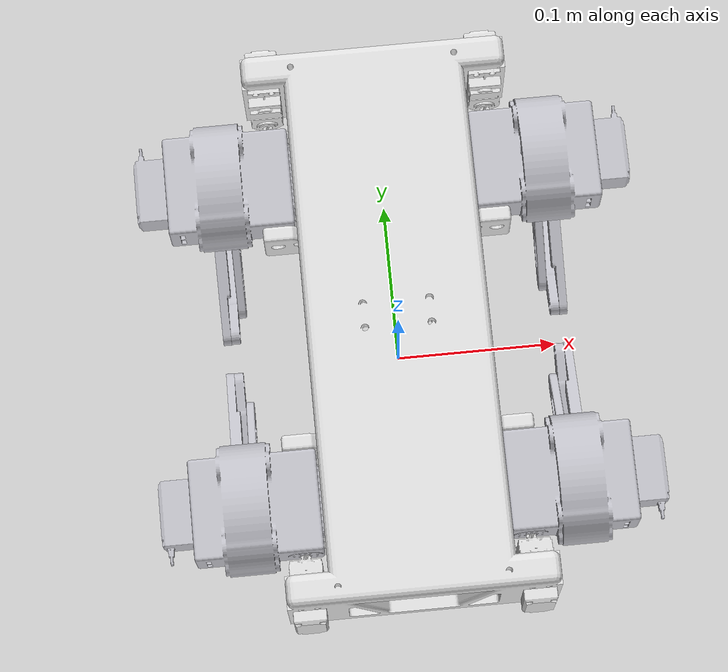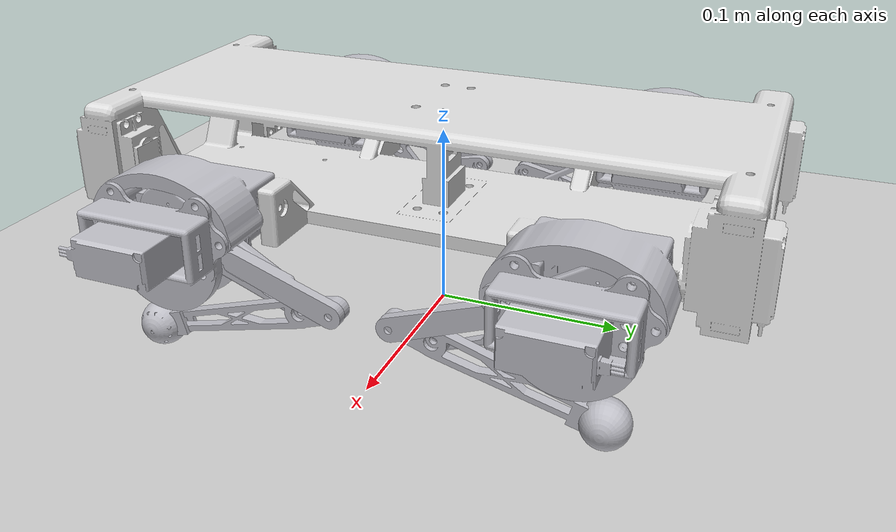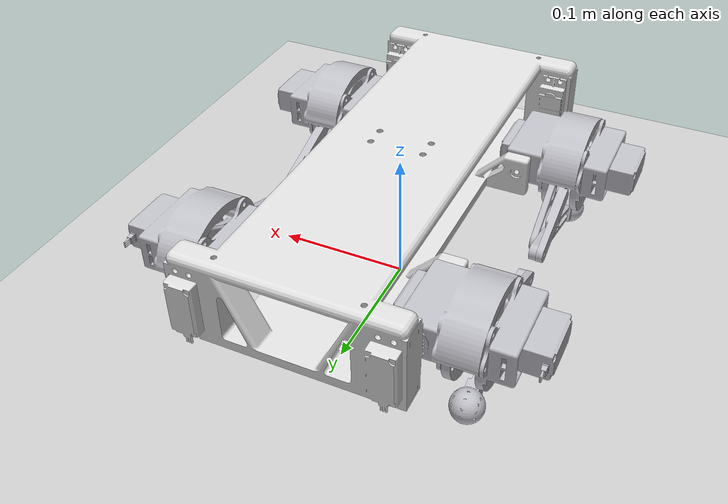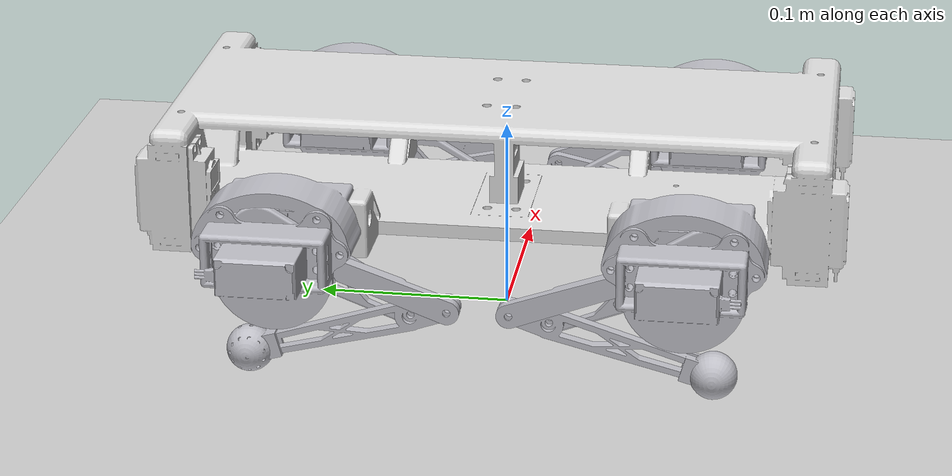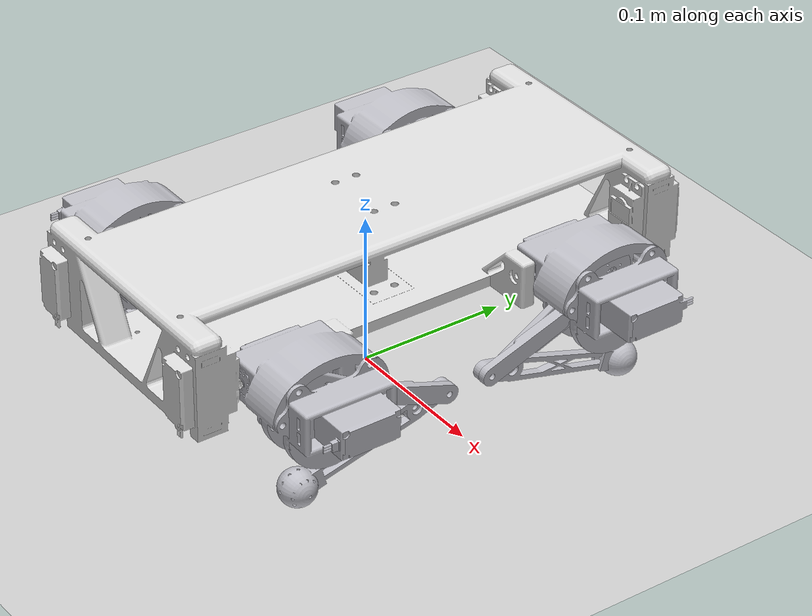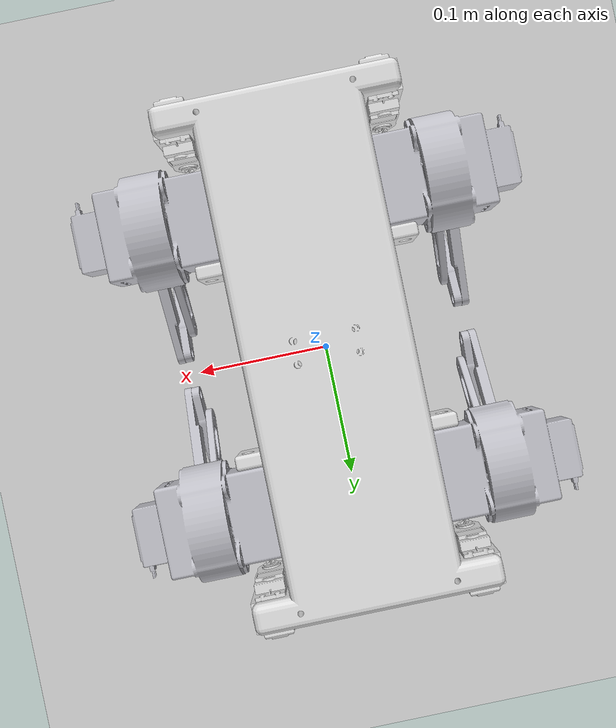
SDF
<?xml version="1.0" ?>
<sdf version="1.6">
  <world name="pioneer3_world">
    <physics name="1ms" type="ignored">
      <max_step_size>0.004</max_step_size>
      <real_time_factor>1.0</real_time_factor>
    </physics>
    <plugin
      filename="gz-sim-physics-system"
      name="gz::sim::systems::Physics">
    </plugin>
    <plugin
      filename="gz-sim-user-commands-system"
      name="gz::sim::systems::UserCommands">
    </plugin>
    <plugin
      filename="gz-sim-scene-broadcaster-system"
      name="gz::sim::systems::SceneBroadcaster">
    </plugin>
    <plugin
      filename="gz-sim-contact-system"
      name="gz::sim::systems::Contact">
    </plugin>

    <light type="directional" name="sun">
      <cast_shadows>true</cast_shadows>
      <pose>0 0 10 0 0 0</pose>
      <diffuse>0.8 0.8 0.8 1</diffuse>
      <specular>0.2 0.2 0.2 1</specular>
      <attenuation>
        <range>1000</range>
        <constant>0.9</constant>
        <linear>0.01</linear>
        <quadratic>0.001</quadratic>
      </attenuation>
      <direction>-0.5 0.1 -0.9</direction>
    </light>

    <model name="ground_plane">
      <static>true</static>
      <link name="link">
        <collision name="collision">
          <geometry>
            <plane>
              <normal>0 0 1</normal>
              <size>100 100</size>
            </plane>
          </geometry>
        </collision>
        <visual name="visual">
          <geometry>
            <plane>
              <normal>0 0 1</normal>
              <size>100 100</size>
            </plane>
          </geometry>
          <material>
            <ambient>0.8 0.8 0.8 1</ambient>
            <diffuse>0.8 0.8 0.8 1</diffuse>
            <specular>0.8 0.8 0.8 1</specular>
          </material>
        </visual>
      </link>
    </model>

    <include>
      <uri>naranjelio.sdf</uri>
      <pose>0 0 0 0 0 0</pose>
    </include>

  </world>
</sdf>

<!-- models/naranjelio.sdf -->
<sdf version='1.11'>
  <model name='naranjelio'>
    <link name='base_link'>
      <inertial>
        <pose>-0.00073235288739456627 3.5096211676128452e-05 0.086833414337982723 0 0 0</pose>
        <mass>0.6934169032732499</mass>
        <inertia>
          <ixx>0.0091529999999999997</ixx>
          <ixy>0</ixy>
          <ixz>0</ixz>
          <iyy>0.0015430000000000001</iyy>
          <iyz>9.9999999999999995e-07</iyz>
          <izz>0.0097520000000000003</izz>
        </inertia>
      </inertial>
      <collision name='base_link_collision'>
        <pose>0 0 0 0 0 0</pose>
        <geometry>
          <mesh>
            <scale>0.001 0.001 0.001</scale>
            <uri>
              /meshes/base_link.stl</uri>
          </mesh>
        </geometry>
      </collision>
      <visual name='base_link_visual'>
        <pose>0 0 0 0 0 0</pose>
        <geometry>
          <mesh>
            <scale>0.001 0.001 0.001</scale>
            <uri>
              /meshes/base_link.stl</uri>
          </mesh>
        </geometry>
        <material>
          <diffuse>0.875 0.875 0.875 1</diffuse>
          <ambient>0.875 0.875 0.875 1</ambient>
        </material>
      </visual>
    </link>
    <joint name='HipBackDer' type='revolute'>
      <pose relative_to='base_link'>-0.068594000000000002 0.13270000000000001 0.072321999999999997 0
        0 0</pose>
      <parent>base_link</parent>
      <child>BackDer_1</child>
      <axis>
        <xyz>0 -1 0</xyz>
        <limit>
          <lower>-3.1415899999999999</lower>
          <upper>3.1415899999999999</upper>
          <effort>10</effort>
          <velocity>5</velocity>
        </limit>
        <dynamics>
          <spring_reference>0</spring_reference>
          <spring_stiffness>0</spring_stiffness>
        </dynamics>
      </axis>
    </joint>
    <link name='BackDer_1'>
      <pose relative_to='HipBackDer'>0 0 0 0 0 0</pose>
      <inertial>
        <pose>-0.028685619247639741 -0.031166626302325501 -0.0006386163483644014 0 0 0</pose>
        <mass>0.089858740267303255</mass>
        <inertia>
          <ixx>6.3999999999999997e-05</ixx>
          <ixy>0</ixy>
          <ixz>0</ixz>
          <iyy>6.7999999999999999e-05</iyy>
          <iyz>0</iyz>
          <izz>8.5000000000000006e-05</izz>
        </inertia>
      </inertial>
      <collision name='BackDer_1_collision'>
        <pose>0.068594000000000002 -0.13270000000000001 -0.072321999999999997 0 0 0</pose>
        <geometry>
          <mesh>
            <scale>0.001 0.001 0.001</scale>
            <uri>
              /meshes/BackDer_1.stl</uri>
          </mesh>
        </geometry>
        <surface>
          <contact>
            <ode />
          </contact>
          <friction>
            <ode>
              <mu>0.20000000000000001</mu>
              <mu2>0.20000000000000001</mu2>
            </ode>
          </friction>
        </surface>
      </collision>
      <visual name='BackDer_1_visual'>
        <pose>0.068594000000000002 -0.13270000000000001 -0.072321999999999997 0 0 0</pose>
        <geometry>
          <mesh>
            <scale>0.001 0.001 0.001</scale>
            <uri>
              /meshes/BackDer_1.stl</uri>
          </mesh>
        </geometry>
        <material>
          <script>
            <name>Gazebo/Silver</name>
            <uri>file://media/materials/scripts/gazebo.material</uri>
          </script>
          <diffuse>0.875 0.875 0.875 1</diffuse>
          <ambient>0.875 0.875 0.875 1</ambient>
        </material>
      </visual>
    </link>
    <joint name='FemurBackDer' type='revolute'>
      <pose relative_to='BackDer_1'>-0.020250000000000001 -0.021661 2.5000000000000001e-05 0 0 0</pose>
      <parent>BackDer_1</parent>
      <child>FemurBackDer_1</child>
      <axis>
        <xyz>-1 0 0</xyz>
        <limit>
          <lower>-3.1415899999999999</lower>
          <upper>3.1415899999999999</upper>
          <effort>10</effort>
          <velocity>5</velocity>
        </limit>
        <dynamics>
          <spring_reference>0</spring_reference>
          <spring_stiffness>0</spring_stiffness>
        </dynamics>
      </axis>
    </joint>
    <link name='FemurBackDer_1'>
      <pose relative_to='FemurBackDer'>0 0 0 0 0 0</pose>
      <inertial>
        <pose>-0.0063772472874746022 -0.024921411587462469 -0.01217290304801827 0 0 0</pose>
        <mass>0.0081105240227534042</mass>
        <inertia>
          <ixx>7.9999999999999996e-06</ixx>
          <ixy>0</ixy>
          <ixz>0</ixz>
          <iyy>1.9999999999999999e-06</iyy>
          <iyz>-3.0000000000000001e-06</iyz>
          <izz>6.0000000000000002e-06</izz>
        </inertia>
      </inertial>
      <collision name='FemurBackDer_1_collision'>
        <pose>0.088844000000000006 -0.111039 -0.072346999999999995 0 0 0</pose>
        <geometry>
          <mesh>
            <scale>0.001 0.001 0.001</scale>
            <uri>
              /meshes/FemurBackDer_1.stl</uri>
          </mesh>
        </geometry>
        <surface>
          <contact>
            <ode />
          </contact>
          <friction>
            <ode>
              <mu>0.20000000000000001</mu>
              <mu2>0.20000000000000001</mu2>
            </ode>
          </friction>
        </surface>
      </collision>
      <visual name='FemurBackDer_1_visual'>
        <pose>0.088844000000000006 -0.111039 -0.072346999999999995 0 0 0</pose>
        <geometry>
          <mesh>
            <scale>0.001 0.001 0.001</scale>
            <uri>
              /meshes/FemurBackDer_1.stl</uri>
          </mesh>
        </geometry>
        <material>
          <script>
            <name>Gazebo/Silver</name>
            <uri>file://media/materials/scripts/gazebo.material</uri>
          </script>
          <diffuse>0.875 0.875 0.875 1</diffuse>
          <ambient>0.875 0.875 0.875 1</ambient>
        </material>
      </visual>
    </link>
    <joint name='FemurTibiaBackDer' type='revolute'>
      <pose relative_to='FemurBackDer_1'>-0.0088999999999999999 -0.076375999999999999 -0.037307 0 0
        0</pose>
      <parent>FemurBackDer_1</parent>
      <child>TibiaLowBackDer_1</child>
      <axis>
        <xyz>-1 0 0</xyz>
        <limit>
          <lower>-3.1415899999999999</lower>
          <upper>3.1415899999999999</upper>
          <effort>10</effort>
          <velocity>5</velocity>
        </limit>
        <dynamics>
          <spring_reference>0</spring_reference>
          <spring_stiffness>0</spring_stiffness>
        </dynamics>
      </axis>
    </joint>
    <link name='TibiaLowBackDer_1'>
      <pose relative_to='FemurTibiaBackDer'>0 0 0 0 0 0</pose>
      <inertial>
        <pose>-0.0027227876049468192 0.05693704112934389 -0.015984987766591179 0 0 0</pose>
        <mass>0.012662139883285611</mass>
        <inertia>
          <ixx>1.7e-05</ixx>
          <ixy>0</ixy>
          <ixz>0</ixz>
          <iyy>1.9999999999999999e-06</iyy>
          <iyz>3.9999999999999998e-06</iyz>
          <izz>1.5999999999999999e-05</izz>
        </inertia>
      </inertial>
      <collision name='TibiaLowBackDer_1_collision'>
        <pose>0.097743999999999998 -0.034662999999999999 -0.035040000000000002 0 0 0</pose>
        <geometry>
          <mesh>
            <scale>0.001 0.001 0.001</scale>
            <uri>
              /meshes/TibiaLowBackDer_1.stl</uri>
          </mesh>
        </geometry>
        <surface>
          <contact>
            <ode />
          </contact>
          <friction>
            <ode>
              <mu>0.20000000000000001</mu>
              <mu2>0.20000000000000001</mu2>
            </ode>
          </friction>
        </surface>
      </collision>
      <visual name='TibiaLowBackDer_1_visual'>
        <pose>0.097743999999999998 -0.034662999999999999 -0.035040000000000002 0 0 0</pose>
        <geometry>
          <mesh>
            <scale>0.001 0.001 0.001</scale>
            <uri>
              /meshes/TibiaLowBackDer_1.stl</uri>
          </mesh>
        </geometry>
        <material>
          <script>
            <name>Gazebo/Silver</name>
            <uri>file://media/materials/scripts/gazebo.material</uri>
          </script>
          <diffuse>0.875 0.875 0.875 1</diffuse>
          <ambient>0.875 0.875 0.875 1</ambient>
        </material>
      </visual>
    </link>
    <joint name='Revolute_52' type='revolute'>
      <pose relative_to='TibiaLowBackDer_1'>-0.0054999999999999997 -0.019255000000000001
        0.0054070000000000003 0 0 0</pose>
      <parent>TibiaLowBackDer_1</parent>
      <child>TibiaHighBackDer_1</child>
      <axis>
        <xyz>-1 0 0</xyz>
        <limit>
          <lower>-3.1415899999999999</lower>
          <upper>3.1415899999999999</upper>
          <effort>10</effort>
          <velocity>5</velocity>
        </limit>
        <dynamics>
          <spring_reference>0</spring_reference>
          <spring_stiffness>0</spring_stiffness>
        </dynamics>
      </axis>
    </joint>
    <link name='TibiaHighBackDer_1'>
      <pose relative_to='Revolute_52'>0 0 0 0 0 0</pose>
      <inertial>
        <pose>-0.001476547826182686 0.03802032808698029 0.01383801812466783 0 0 0</pose>
        <mass>0.0058687334356246953</mass>
        <inertia>
          <ixx>3.0000000000000001e-06</ixx>
          <ixy>0</ixy>
          <ixz>0</ixz>
          <iyy>9.9999999999999995e-07</iyy>
          <iyz>-9.9999999999999995e-07</iyz>
          <izz>3.0000000000000001e-06</izz>
        </inertia>
      </inertial>
      <collision name='TibiaHighBackDer_1_collision'>
        <pose>0.103244 -0.015408 -0.040446999999999997 0 0 0</pose>
        <geometry>
          <mesh>
            <scale>0.001 0.001 0.001</scale>
            <uri>
              /meshes/TibiaHighBackDer_1.stl</uri>
          </mesh>
        </geometry>
        <surface>
          <contact>
            <ode />
          </contact>
          <friction>
            <ode>
              <mu>0.20000000000000001</mu>
              <mu2>0.20000000000000001</mu2>
            </ode>
          </friction>
        </surface>
      </collision>
      <visual name='TibiaHighBackDer_1_visual'>
        <pose>0.103244 -0.015408 -0.040446999999999997 0 0 0</pose>
        <geometry>
          <mesh>
            <scale>0.001 0.001 0.001</scale>
            <uri>
              /meshes/TibiaHighBackDer_1.stl</uri>
          </mesh>
        </geometry>
        <material>
          <script>
            <name>Gazebo/Silver</name>
            <uri>file://media/materials/scripts/gazebo.material</uri>
          </script>
          <diffuse>0.875 0.875 0.875 1</diffuse>
          <ambient>0.875 0.875 0.875 1</ambient>
        </material>
      </visual>
    </link>
    <joint name='Revolute_51' type='revolute'>
      <pose relative_to='TibiaHighBackDer_1'>-0.0025000000000000001 0.079874000000000001 0.029071 0
        0 0</pose>
      <parent>TibiaHighBackDer_1</parent>
      <child>PivotTibiaBackDer_1</child>
      <axis>
        <xyz>-1 0 0</xyz>
        <limit>
          <lower>-3.1415899999999999</lower>
          <upper>3.1415899999999999</upper>
          <effort>10</effort>
          <velocity>5</velocity>
        </limit>
        <dynamics>
          <spring_reference>0</spring_reference>
          <spring_stiffness>0</spring_stiffness>
        </dynamics>
      </axis>
    </joint>
    <link name='PivotTibiaBackDer_1'>
      <pose relative_to='Revolute_51'>0 0 0 0 0 0</pose>
      <inertial>
        <pose>-0.001692763655314025 0.015756854381915181 0.0027788543819850242 0 0 0</pose>
        <mass>0.00077804272735592956</mass>
        <inertia>
          <ixx>1.0e-06</ixx>
          <ixy>0.0</ixy>
          <ixz>0.0</ixz>
          <iyy>1.0e-06</iyy>
          <iyz>0.0</iyz>
          <izz>1.0e-06</izz>
        </inertia>
      </inertial>
      <collision name='PivotTibiaBackDer_1_collision'>
        <pose>0.105744 -0.095282000000000006 -0.069517999999999996 0 0 0</pose>
        <geometry>
          <mesh>
            <scale>0.001 0.001 0.001</scale>
            <uri>
              /meshes/PivotTibiaBackDer_1.stl</uri>
          </mesh>
        </geometry>
        <surface>
          <contact>
            <ode />
          </contact>
          <friction>
            <ode>
              <mu>0.20000000000000001</mu>
              <mu2>0.20000000000000001</mu2>
            </ode>
          </friction>
        </surface>
      </collision>
      <visual name='PivotTibiaBackDer_1_visual'>
        <pose>0.105744 -0.095282000000000006 -0.069517999999999996 0 0 0</pose>
        <geometry>
          <mesh>
            <scale>0.001 0.001 0.001</scale>
            <uri>
              /meshes/PivotTibiaBackDer_1.stl</uri>
          </mesh>
        </geometry>
        <material>
          <script>
            <name>Gazebo/Silver</name>
            <uri>file://media/materials/scripts/gazebo.material</uri>
          </script>
          <diffuse>0.875 0.875 0.875 1</diffuse>
          <ambient>0.875 0.875 0.875 1</ambient>
        </material>
      </visual>
    </link>
    <joint name='HipBackIzq' type='revolute'>
      <pose relative_to='base_link'>0.067105999999999999 0.13270000000000001 0.072321999999999997 0
        0 0</pose>
      <parent>base_link</parent>
      <child>BackIzq_1</child>
      <axis>
        <xyz>0 -1 0</xyz>
        <limit>
          <lower>-3.1415899999999999</lower>
          <upper>3.1415899999999999</upper>
          <effort>10</effort>
          <velocity>5</velocity>
        </limit>
        <dynamics>
          <spring_reference>0</spring_reference>
          <spring_stiffness>0</spring_stiffness>
        </dynamics>
      </axis>
    </joint>
    <link name='BackIzq_1'>
      <pose relative_to='HipBackIzq'>0 0 0 0 0 0</pose>
      <inertial>
        <pose>0.02868501527028124 -0.03125888869900853 -0.00063861634837285297 0 0 0</pose>
        <mass>0.089858740265124956</mass>
        <inertia>
          <ixx>6.3999999999999997e-05</ixx>
          <ixy>0</ixy>
          <ixz>0</ixz>
          <iyy>6.7999999999999999e-05</iyy>
          <iyz>0</iyz>
          <izz>8.5000000000000006e-05</izz>
        </inertia>
      </inertial>
      <collision name='BackIzq_1_collision'>
        <pose>-0.067105999999999999 -0.13270000000000001 -0.072321999999999997 0 0 0</pose>
        <geometry>
          <mesh>
            <scale>0.001 0.001 0.001</scale>
            <uri>
              /meshes/BackIzq_1.stl</uri>
          </mesh>
        </geometry>
        <surface>
          <contact>
            <ode />
          </contact>
          <friction>
            <ode>
              <mu>0.20000000000000001</mu>
              <mu2>0.20000000000000001</mu2>
            </ode>
          </friction>
        </surface>
      </collision>
      <visual name='BackIzq_1_visual'>
        <pose>-0.067105999999999999 -0.13270000000000001 -0.072321999999999997 0 0 0</pose>
        <geometry>
          <mesh>
            <scale>0.001 0.001 0.001</scale>
            <uri>
              /meshes/BackIzq_1.stl</uri>
          </mesh>
        </geometry>
        <material>
          <script>
            <name>Gazebo/Silver</name>
            <uri>file://media/materials/scripts/gazebo.material</uri>
          </script>
          <diffuse>0.875 0.875 0.875 1</diffuse>
          <ambient>0.875 0.875 0.875 1</ambient>
        </material>
      </visual>
    </link>
    <joint name='FemurBackIzq' type='revolute'>
      <pose relative_to='BackIzq_1'>0.020250000000000001 -0.021661 -2.5000000000000001e-05 0 0 0</pose>
      <parent>BackIzq_1</parent>
      <child>FemurBackIzq_1</child>
      <axis>
        <xyz>1 0 0</xyz>
        <limit>
          <lower>-3.1415899999999999</lower>
          <upper>3.1415899999999999</upper>
          <effort>10</effort>
          <velocity>5</velocity>
        </limit>
        <dynamics>
          <spring_reference>0</spring_reference>
          <spring_stiffness>0</spring_stiffness>
        </dynamics>
      </axis>
    </joint>
    <link name='FemurBackIzq_1'>
      <pose relative_to='FemurBackIzq'>0 0 0 0 0 0</pose>
      <inertial>
        <pose>0.0063766432477349866 -0.024926951699854639 -0.012161594144430131 0 0 0</pose>
        <mass>0.0081105239167281948</mass>
        <inertia>
          <ixx>7.9999999999999996e-06</ixx>
          <ixy>0</ixy>
          <ixz>0</ixz>
          <iyy>1.9999999999999999e-06</iyy>
          <iyz>-3.0000000000000001e-06</iyz>
          <izz>6.0000000000000002e-06</izz>
        </inertia>
      </inertial>
      <collision name='FemurBackIzq_1_collision'>
        <pose>-0.087356000000000003 -0.111039 -0.072297 0 0 0</pose>
        <geometry>
          <mesh>
            <scale>0.001 0.001 0.001</scale>
            <uri>
              /meshes/FemurBackIzq_1.stl</uri>
          </mesh>
        </geometry>
        <surface>
          <contact>
            <ode />
          </contact>
          <friction>
            <ode>
              <mu>0.20000000000000001</mu>
              <mu2>0.20000000000000001</mu2>
            </ode>
          </friction>
        </surface>
      </collision>
      <visual name='FemurBackIzq_1_visual'>
        <pose>-0.087356000000000003 -0.111039 -0.072297 0 0 0</pose>
        <geometry>
          <mesh>
            <scale>0.001 0.001 0.001</scale>
            <uri>
              /meshes/FemurBackIzq_1.stl</uri>
          </mesh>
        </geometry>
        <material>
          <script>
            <name>Gazebo/Silver</name>
            <uri>file://media/materials/scripts/gazebo.material</uri>
          </script>
          <diffuse>0.875 0.875 0.875 1</diffuse>
          <ambient>0.875 0.875 0.875 1</ambient>
        </material>
      </visual>
    </link>
    <joint name='FemurTibiaBackIzq' type='revolute'>
      <pose relative_to='FemurBackIzq_1'>0.0088999999999999999 -0.076393000000000003
        -0.037269999999999998 0 0 0</pose>
      <parent>FemurBackIzq_1</parent>
      <child>TibiaLowBackIzq_1</child>
      <axis>
        <xyz>1 0 0</xyz>
        <limit>
          <lower>-3.1415899999999999</lower>
          <upper>3.1415899999999999</upper>
          <effort>10</effort>
          <velocity>5</velocity>
        </limit>
        <dynamics>
          <spring_reference>0</spring_reference>
          <spring_stiffness>0</spring_stiffness>
        </dynamics>
      </axis>
    </joint>
    <link name='TibiaLowBackIzq_1'>
      <pose relative_to='FemurTibiaBackIzq'>0 0 0 0 0 0</pose>
      <inertial>
        <pose>0.002722115468575953 0.057033997146449682 -0.016217300952275499 0 0 0</pose>
        <mass>0.01270059737038217</mass>
        <inertia>
          <ixx>1.7e-05</ixx>
          <ixy>0</ixy>
          <ixz>0</ixz>
          <iyy>1.9999999999999999e-06</iyy>
          <iyz>3.9999999999999998e-06</iyz>
          <izz>1.5999999999999999e-05</izz>
        </inertia>
      </inertial>
      <collision name='TibiaLowBackIzq_1_collision'>
        <pose>-0.096255999999999994 -0.034646000000000003 -0.035027000000000003 0 0 0</pose>
        <geometry>
          <mesh>
            <scale>0.001 0.001 0.001</scale>
            <uri>
              /meshes/TibiaLowBackIzq_1.stl</uri>
          </mesh>
        </geometry>
        <surface>
          <contact>
            <ode />
          </contact>
          <friction>
            <ode>
              <mu>0.20000000000000001</mu>
              <mu2>0.20000000000000001</mu2>
            </ode>
          </friction>
        </surface>
      </collision>
      <visual name='TibiaLowBackIzq_1_visual'>
        <pose>-0.096255999999999994 -0.034646000000000003 -0.035027000000000003 0 0 0</pose>
        <geometry>
          <mesh>
            <scale>0.001 0.001 0.001</scale>
            <uri>
              /meshes/TibiaLowBackIzq_1.stl</uri>
          </mesh>
        </geometry>
        <material>
          <script>
            <name>Gazebo/Silver</name>
            <uri>file://media/materials/scripts/gazebo.material</uri>
          </script>
          <diffuse>0.875 0.875 0.875 1</diffuse>
          <ambient>0.875 0.875 0.875 1</ambient>
        </material>
      </visual>
    </link>
    <joint name='Revolute_48' type='revolute'>
      <pose relative_to='TibiaLowBackIzq_1'>0.0054999999999999997 -0.019238000000000002 0.00547 0 0
        0</pose>
      <parent>TibiaLowBackIzq_1</parent>
      <child>TIbiaHighBackIzq_1</child>
      <axis>
        <xyz>1 0 0</xyz>
        <limit>
          <lower>-3.1415899999999999</lower>
          <upper>3.1415899999999999</upper>
          <effort>10</effort>
          <velocity>5</velocity>
        </limit>
        <dynamics>
          <spring_reference>0</spring_reference>
          <spring_stiffness>0</spring_stiffness>
        </dynamics>
      </axis>
    </joint>
    <link name='TIbiaHighBackIzq_1'>
      <pose relative_to='Revolute_48'>0 0 0 0 0 0</pose>
      <inertial>
        <pose>0.001475943775834251 0.038020328086979728 0.01383801812466756 0 0 0</pose>
        <mass>0.0058687334356246953</mass>
        <inertia>
          <ixx>3.0000000000000001e-06</ixx>
          <ixy>0</ixy>
          <ixz>0</ixz>
          <iyy>9.9999999999999995e-07</iyy>
          <iyz>-9.9999999999999995e-07</iyz>
          <izz>3.0000000000000001e-06</izz>
        </inertia>
      </inertial>
      <collision name='TIbiaHighBackIzq_1_collision'>
        <pose>-0.101756 -0.015408 -0.040496999999999998 0 0 0</pose>
        <geometry>
          <mesh>
            <scale>0.001 0.001 0.001</scale>
            <uri>
              /meshes/TIbiaHighBackIzq_1.stl</uri>
          </mesh>
        </geometry>
        <surface>
          <contact>
            <ode />
          </contact>
          <friction>
            <ode>
              <mu>0.20000000000000001</mu>
              <mu2>0.20000000000000001</mu2>
            </ode>
          </friction>
        </surface>
      </collision>
      <visual name='TIbiaHighBackIzq_1_visual'>
        <pose>-0.101756 -0.015408 -0.040496999999999998 0 0 0</pose>
        <geometry>
          <mesh>
            <scale>0.001 0.001 0.001</scale>
            <uri>
              /meshes/TIbiaHighBackIzq_1.stl</uri>
          </mesh>
        </geometry>
        <material>
          <script>
            <name>Gazebo/Silver</name>
            <uri>file://media/materials/scripts/gazebo.material</uri>
          </script>
          <diffuse>0.875 0.875 0.875 1</diffuse>
          <ambient>0.875 0.875 0.875 1</ambient>
        </material>
      </visual>
    </link>
    <joint name='Revolute_47' type='revolute'>
      <pose relative_to='TIbiaHighBackIzq_1'>0.0025000000000000001 0.079874000000000001 0.029071 0 0
        0</pose>
      <parent>TIbiaHighBackIzq_1</parent>
      <child>PivotTibiaBackIzq_1</child>
      <axis>
        <xyz>1 0 0</xyz>
        <limit>
          <lower>-3.1415899999999999</lower>
          <upper>3.1415899999999999</upper>
          <effort>10</effort>
          <velocity>5</velocity>
        </limit>
        <dynamics>
          <spring_reference>0</spring_reference>
          <spring_stiffness>0</spring_stiffness>
        </dynamics>
      </axis>
    </joint>
    <link name='PivotTibiaBackIzq_1'>
      <pose relative_to='Revolute_47'>0 0 0 0 0 0</pose>
      <inertial>
        <pose>0.00169215960496609 0.015707613994263792 0.0027701719731016978 0 0 0</pose>
        <mass>0.00077804272735592956</mass>
        <inertia>
          <ixx>1.0e-06</ixx>
          <ixy>0.0</ixy>
          <ixz>0.0</ixz>
          <iyy>1.0e-06</iyy>
          <iyz>0.0</iyz>
          <izz>1.0e-06</izz>
        </inertia>
      </inertial>
      <collision name='PivotTibiaBackIzq_1_collision'>
        <pose>-0.104256 -0.095282000000000006 -0.069568000000000005 0 0 0</pose>
        <geometry>
          <mesh>
            <scale>0.001 0.001 0.001</scale>
            <uri>
              /meshes/PivotTibiaBackIzq_1.stl</uri>
          </mesh>
        </geometry>
        <surface>
          <contact>
            <ode />
          </contact>
          <friction>
            <ode>
              <mu>0.20000000000000001</mu>
              <mu2>0.20000000000000001</mu2>
            </ode>
          </friction>
        </surface>
      </collision>
      <visual name='PivotTibiaBackIzq_1_visual'>
        <pose>-0.104256 -0.095282000000000006 -0.069568000000000005 0 0 0</pose>
        <geometry>
          <mesh>
            <scale>0.001 0.001 0.001</scale>
            <uri>
              /meshes/PivotTibiaBackIzq_1.stl</uri>
          </mesh>
        </geometry>
        <material>
          <script>
            <name>Gazebo/Silver</name>
            <uri>file://media/materials/scripts/gazebo.material</uri>
          </script>
          <diffuse>0.875 0.875 0.875 1</diffuse>
          <ambient>0.875 0.875 0.875 1</ambient>
        </material>
      </visual>
    </link>
    <joint name='HipFrontDer' type='revolute'>
      <pose relative_to='base_link'>-0.068594000000000002 -0.13270000000000001 0.072321999999999997
        0 0 0</pose>
      <parent>base_link</parent>
      <child>FrontDer_1</child>
      <axis>
        <xyz>0 1 0</xyz>
        <limit>
          <lower>-3.1415899999999999</lower>
          <upper>3.1415899999999999</upper>
          <effort>10</effort>
          <velocity>5</velocity>
        </limit>
        <dynamics>
          <spring_reference>0</spring_reference>
          <spring_stiffness>0</spring_stiffness>
        </dynamics>
      </axis>
    </joint>
    <link name='FrontDer_1'>
      <pose relative_to='HipFrontDer'>0 0 0 0 0 0</pose>
      <inertial>
        <pose>-0.02868561924757165 0.031258888699007843 -0.00063861634837283909 0 0 0</pose>
        <mass>0.089858740265127912</mass>
        <inertia>
          <ixx>6.3999999999999997e-05</ixx>
          <ixy>0</ixy>
          <ixz>0</ixz>
          <iyy>6.7999999999999999e-05</iyy>
          <iyz>0</iyz>
          <izz>8.5000000000000006e-05</izz>
        </inertia>
      </inertial>
      <collision name='FrontDer_1_collision'>
        <pose>0.068594000000000002 0.13270000000000001 -0.072321999999999997 0 0 0</pose>
        <geometry>
          <mesh>
            <scale>0.001 0.001 0.001</scale>
            <uri>
              /meshes/FrontDer_1.stl</uri>
          </mesh>
        </geometry>
        <surface>
          <contact>
            <ode />
          </contact>
          <friction>
            <ode>
              <mu>0.20000000000000001</mu>
              <mu2>0.20000000000000001</mu2>
            </ode>
          </friction>
        </surface>
      </collision>
      <visual name='FrontDer_1_visual'>
        <pose>0.068594000000000002 0.13270000000000001 -0.072321999999999997 0 0 0</pose>
        <geometry>
          <mesh>
            <scale>0.001 0.001 0.001</scale>
            <uri>
              /meshes/FrontDer_1.stl</uri>
          </mesh>
        </geometry>
        <material>
          <script>
            <name>Gazebo/Silver</name>
            <uri>file://media/materials/scripts/gazebo.material</uri>
          </script>
          <diffuse>0.875 0.875 0.875 1</diffuse>
          <ambient>0.875 0.875 0.875 1</ambient>
        </material>
      </visual>
    </link>
    <joint name='FemurFrontDer' type='revolute'>
      <pose relative_to='FrontDer_1'>-0.020250000000000001 0.021661 -2.5000000000000001e-05 0 0 0</pose>
      <parent>FrontDer_1</parent>
      <child>FemurFrontDer_1</child>
      <axis>
        <xyz>-1 0 0</xyz>
        <limit>
          <lower>-3.1415899999999999</lower>
          <upper>3.1415899999999999</upper>
          <effort>10</effort>
          <velocity>5</velocity>
        </limit>
        <dynamics>
          <spring_reference>0</spring_reference>
          <spring_stiffness>0</spring_stiffness>
        </dynamics>
      </axis>
    </joint>
    <link name='FemurFrontDer_1'>
      <pose relative_to='FemurFrontDer'>0 0 0 0 0 0</pose>
      <inertial>
        <pose>-0.0063772472869298297 0.024926951699869301 -0.012161594144447639 0 0 0</pose>
        <mass>0.0081105239167268556</mass>
        <inertia>
          <ixx>7.9999999999999996e-06</ixx>
          <ixy>0</ixy>
          <ixz>0</ixz>
          <iyy>1.9999999999999999e-06</iyy>
          <iyz>3.0000000000000001e-06</iyz>
          <izz>6.0000000000000002e-06</izz>
        </inertia>
      </inertial>
      <collision name='FemurFrontDer_1_collision'>
        <pose>0.088844000000000006 0.111039 -0.072297 0 0 0</pose>
        <geometry>
          <mesh>
            <scale>0.001 0.001 0.001</scale>
            <uri>
              /meshes/FemurFrontDer_1.stl</uri>
          </mesh>
        </geometry>
        <surface>
          <contact>
            <ode />
          </contact>
          <friction>
            <ode>
              <mu>0.20000000000000001</mu>
              <mu2>0.20000000000000001</mu2>
            </ode>
          </friction>
        </surface>
      </collision>
      <visual name='FemurFrontDer_1_visual'>
        <pose>0.088844000000000006 0.111039 -0.072297 0 0 0</pose>
        <geometry>
          <mesh>
            <scale>0.001 0.001 0.001</scale>
            <uri>
              /meshes/FemurFrontDer_1.stl</uri>
          </mesh>
        </geometry>
        <material>
          <script>
            <name>Gazebo/Silver</name>
            <uri>file://media/materials/scripts/gazebo.material</uri>
          </script>
          <diffuse>0.875 0.875 0.875 1</diffuse>
          <ambient>0.875 0.875 0.875 1</ambient>
        </material>
      </visual>
    </link>
    <joint name='FemurTibiaFrontDer' type='revolute'>
      <pose relative_to='FemurFrontDer_1'>-0.0088999999999999999 0.076393000000000003
        -0.037269999999999998 0 0 0</pose>
      <parent>FemurFrontDer_1</parent>
      <child>TibiaLowFrontDer_1</child>
      <axis>
        <xyz>-1 0 0</xyz>
        <limit>
          <lower>-3.1415899999999999</lower>
          <upper>3.1415899999999999</upper>
          <effort>10</effort>
          <velocity>5</velocity>
        </limit>
        <dynamics>
          <spring_reference>0</spring_reference>
          <spring_stiffness>0</spring_stiffness>
        </dynamics>
      </axis>
    </joint>
    <link name='TibiaLowFrontDer_1'>
      <pose relative_to='FemurTibiaFrontDer'>0 0 0 0 0 0</pose>
      <inertial>
        <pose>-0.0027227195189232362 -0.05703399714645422 -0.016217300952278611 0 0 0</pose>
        <mass>0.01270059737037935</mass>
        <inertia>
          <ixx>1.7e-05</ixx>
          <ixy>0</ixy>
          <ixz>0</ixz>
          <iyy>1.9999999999999999e-06</iyy>
          <iyz>-3.9999999999999998e-06</iyz>
          <izz>1.5999999999999999e-05</izz>
        </inertia>
      </inertial>
      <collision name='TibiaLowFrontDer_1_collision'>
        <pose>0.097743999999999998 0.034646000000000003 -0.035027000000000003 0 0 0</pose>
        <geometry>
          <mesh>
            <scale>0.001 0.001 0.001</scale>
            <uri>
              /meshes/TibiaLowFrontDer_1.stl</uri>
          </mesh>
        </geometry>
        <surface>
          <contact>
            <ode />
          </contact>
          <friction>
            <ode>
              <mu>0.20000000000000001</mu>
              <mu2>0.20000000000000001</mu2>
            </ode>
          </friction>
        </surface>
      </collision>
      <visual name='TibiaLowFrontDer_1_visual'>
        <pose>0.097743999999999998 0.034646000000000003 -0.035027000000000003 0 0 0</pose>
        <geometry>
          <mesh>
            <scale>0.001 0.001 0.001</scale>
            <uri>
              /meshes/TibiaLowFrontDer_1.stl</uri>
          </mesh>
        </geometry>
        <material>
          <script>
            <name>Gazebo/Silver</name>
            <uri>file://media/materials/scripts/gazebo.material</uri>
          </script>
          <diffuse>0.875 0.875 0.875 1</diffuse>
          <ambient>0.875 0.875 0.875 1</ambient>
        </material>
      </visual>
    </link>
    <joint name='Revolute_50' type='revolute'>
      <pose relative_to='TibiaLowFrontDer_1'>-0.0054999999999999997 0.019238000000000002 0.00547 0 0
        0</pose>
      <parent>TibiaLowFrontDer_1</parent>
      <child>TibiaHighFrontDer_1</child>
      <axis>
        <xyz>-1 0 0</xyz>
        <limit>
          <lower>-3.1415899999999999</lower>
          <upper>3.1415899999999999</upper>
          <effort>10</effort>
          <velocity>5</velocity>
        </limit>
        <dynamics>
          <spring_reference>0</spring_reference>
          <spring_stiffness>0</spring_stiffness>
        </dynamics>
      </axis>
    </joint>
    <link name='TibiaHighFrontDer_1'>
      <pose relative_to='Revolute_50'>0 0 0 0 0 0</pose>
      <inertial>
        <pose>-0.0014765478261815619 -0.038020328086980477 0.013838018124667671 0 0 0</pose>
        <mass>0.0058687334356246953</mass>
        <inertia>
          <ixx>3.0000000000000001e-06</ixx>
          <ixy>0</ixy>
          <ixz>0</ixz>
          <iyy>9.9999999999999995e-07</iyy>
          <iyz>9.9999999999999995e-07</iyz>
          <izz>3.0000000000000001e-06</izz>
        </inertia>
      </inertial>
      <collision name='TibiaHighFrontDer_1_collision'>
        <pose>0.103244 0.015408 -0.040496999999999998 0 0 0</pose>
        <geometry>
          <mesh>
            <scale>0.001 0.001 0.001</scale>
            <uri>
              /meshes/TibiaHighFrontDer_1.stl</uri>
          </mesh>
        </geometry>
        <surface>
          <contact>
            <ode />
          </contact>
          <friction>
            <ode>
              <mu>0.20000000000000001</mu>
              <mu2>0.20000000000000001</mu2>
            </ode>
          </friction>
        </surface>
      </collision>
      <visual name='TibiaHighFrontDer_1_visual'>
        <pose>0.103244 0.015408 -0.040496999999999998 0 0 0</pose>
        <geometry>
          <mesh>
            <scale>0.001 0.001 0.001</scale>
            <uri>
              /meshes/TibiaHighFrontDer_1.stl</uri>
          </mesh>
        </geometry>
        <material>
          <script>
            <name>Gazebo/Silver</name>
            <uri>file://media/materials/scripts/gazebo.material</uri>
          </script>
          <diffuse>0.875 0.875 0.875 1</diffuse>
          <ambient>0.875 0.875 0.875 1</ambient>
        </material>
      </visual>
    </link>
    <joint name='Revolute_49' type='revolute'>
      <pose relative_to='TibiaHighFrontDer_1'>-0.0025000000000000001 -0.079874000000000001 0.029071
        0 0 0</pose>
      <parent>TibiaHighFrontDer_1</parent>
      <child>PivotTibiaFrontDer_1</child>
      <axis>
        <xyz>-1 0 0</xyz>
        <limit>
          <lower>-3.1415899999999999</lower>
          <upper>3.1415899999999999</upper>
          <effort>10</effort>
          <velocity>5</velocity>
        </limit>
        <dynamics>
          <spring_reference>0</spring_reference>
          <spring_stiffness>0</spring_stiffness>
        </dynamics>
      </axis>
    </joint>
    <link name='PivotTibiaFrontDer_1'>
      <pose relative_to='Revolute_49'>0 0 0 0 0 0</pose>
      <inertial>
        <pose>-0.001692763655313276 -0.015707613994264649 0.0027701719731016432 0 0 0</pose>
        <mass>0.00077804272735592956</mass>
        <inertia>
          <ixx>1.0e-06</ixx>
          <ixy>0.0</ixy>
          <ixz>0.0</ixz>
          <iyy>1.0e-06</iyy>
          <iyz>0.0</iyz>
          <izz>1.0e-06</izz>
        </inertia>
      </inertial>
      <collision name='PivotTibiaFrontDer_1_collision'>
        <pose>0.105744 0.095282000000000006 -0.069568000000000005 0 0 0</pose>
        <geometry>
          <mesh>
            <scale>0.001 0.001 0.001</scale>
            <uri>
              /meshes/PivotTibiaFrontDer_1.stl</uri>
          </mesh>
        </geometry>
        <surface>
          <contact>
            <ode />
          </contact>
          <friction>
            <ode>
              <mu>0.20000000000000001</mu>
              <mu2>0.20000000000000001</mu2>
            </ode>
          </friction>
        </surface>
      </collision>
      <visual name='PivotTibiaFrontDer_1_visual'>
        <pose>0.105744 0.095282000000000006 -0.069568000000000005 0 0 0</pose>
        <geometry>
          <mesh>
            <scale>0.001 0.001 0.001</scale>
            <uri>
              /meshes/PivotTibiaFrontDer_1.stl</uri>
          </mesh>
        </geometry>
        <material>
          <script>
            <name>Gazebo/Silver</name>
            <uri>file://media/materials/scripts/gazebo.material</uri>
          </script>
          <diffuse>0.875 0.875 0.875 1</diffuse>
          <ambient>0.875 0.875 0.875 1</ambient>
        </material>
      </visual>
    </link>
    <joint name='HipFrontIzq' type='revolute'>
      <pose relative_to='base_link'>0.067105999999999999 -0.13270000000000001 0.072321999999999997 0
        0 0</pose>
      <parent>base_link</parent>
      <child>FrontIzq_1</child>
      <axis>
        <xyz>0 1 0</xyz>
        <limit>
          <lower>-3.1415899999999999</lower>
          <upper>3.1415899999999999</upper>
          <effort>10</effort>
          <velocity>5</velocity>
        </limit>
        <dynamics>
          <spring_reference>0</spring_reference>
          <spring_stiffness>0</spring_stiffness>
        </dynamics>
      </axis>
    </joint>
    <link name='FrontIzq_1'>
      <pose relative_to='HipFrontIzq'>0 0 0 0 0 0</pose>
      <inertial>
        <pose>0.0286850152703528 0.03116662630232471 -0.00063861634836306913 0 0 0</pose>
        <mass>0.089858740267301784</mass>
        <inertia>
          <ixx>6.3999999999999997e-05</ixx>
          <ixy>0</ixy>
          <ixz>0</ixz>
          <iyy>6.7999999999999999e-05</iyy>
          <iyz>0</iyz>
          <izz>8.5000000000000006e-05</izz>
        </inertia>
      </inertial>
      <collision name='FrontIzq_1_collision'>
        <pose>-0.067105999999999999 0.13270000000000001 -0.072321999999999997 0 0 0</pose>
        <geometry>
          <mesh>
            <scale>0.001 0.001 0.001</scale>
            <uri>
              /meshes/FrontIzq_1.stl</uri>
          </mesh>
        </geometry>
        <surface>
          <contact>
            <ode />
          </contact>
          <friction>
            <ode>
              <mu>0.20000000000000001</mu>
              <mu2>0.20000000000000001</mu2>
            </ode>
          </friction>
        </surface>
      </collision>
      <visual name='FrontIzq_1_visual'>
        <pose>-0.067105999999999999 0.13270000000000001 -0.072321999999999997 0 0 0</pose>
        <geometry>
          <mesh>
            <scale>0.001 0.001 0.001</scale>
            <uri>
              /meshes/FrontIzq_1.stl</uri>
          </mesh>
        </geometry>
        <material>
          <script>
            <name>Gazebo/Silver</name>
            <uri>file://media/materials/scripts/gazebo.material</uri>
          </script>
          <diffuse>0.875 0.875 0.875 1</diffuse>
          <ambient>0.875 0.875 0.875 1</ambient>
        </material>
      </visual>
    </link>
    <joint name='FemurFrontIzq' type='revolute'>
      <pose relative_to='FrontIzq_1'>0.020250000000000001 0.021661 2.5000000000000001e-05 0 0 0</pose>
      <parent>FrontIzq_1</parent>
      <child>FemurFrontIzq_1</child>
      <axis>
        <xyz>1 0 0</xyz>
        <limit>
          <lower>-3.1415899999999999</lower>
          <upper>3.1415899999999999</upper>
          <effort>10</effort>
          <velocity>5</velocity>
        </limit>
        <dynamics>
          <spring_reference>0</spring_reference>
          <spring_stiffness>0</spring_stiffness>
        </dynamics>
      </axis>
    </joint>
    <link name='FemurFrontIzq_1'>
      <pose relative_to='FemurFrontIzq'>0 0 0 0 0 0</pose>
      <inertial>
        <pose>0.0063766432477946611 0.024921411587435119 -0.01217290304801478 0 0 0</pose>
        <mass>0.0081105240227538015</mass>
        <inertia>
          <ixx>7.9999999999999996e-06</ixx>
          <ixy>0</ixy>
          <ixz>0</ixz>
          <iyy>1.9999999999999999e-06</iyy>
          <iyz>3.0000000000000001e-06</iyz>
          <izz>6.0000000000000002e-06</izz>
        </inertia>
      </inertial>
      <collision name='FemurFrontIzq_1_collision'>
        <pose>-0.087356000000000003 0.111039 -0.072346999999999995 0 0 0</pose>
        <geometry>
          <mesh>
            <scale>0.001 0.001 0.001</scale>
            <uri>
              /meshes/FemurFrontIzq_1.stl</uri>
          </mesh>
        </geometry>
        <surface>
          <contact>
            <ode />
          </contact>
          <friction>
            <ode>
              <mu>0.20000000000000001</mu>
              <mu2>0.20000000000000001</mu2>
            </ode>
          </friction>
        </surface>
      </collision>
      <visual name='FemurFrontIzq_1_visual'>
        <pose>-0.087356000000000003 0.111039 -0.072346999999999995 0 0 0</pose>
        <geometry>
          <mesh>
            <scale>0.001 0.001 0.001</scale>
            <uri>
              /meshes/FemurFrontIzq_1.stl</uri>
          </mesh>
        </geometry>
        <material>
          <script>
            <name>Gazebo/Silver</name>
            <uri>file://media/materials/scripts/gazebo.material</uri>
          </script>
          <diffuse>0.875 0.875 0.875 1</diffuse>
          <ambient>0.875 0.875 0.875 1</ambient>
        </material>
      </visual>
    </link>
    <joint name='FemurTibiaFrontIzq' type='revolute'>
      <pose relative_to='FemurFrontIzq_1'>0.0088999999999999999 0.076375999999999999 -0.037307 0 0 0</pose>
      <parent>FemurFrontIzq_1</parent>
      <child>TibiaLowFrontIzq_1</child>
      <axis>
        <xyz>1 0 0</xyz>
        <limit>
          <lower>-3.1415899999999999</lower>
          <upper>3.1415899999999999</upper>
          <effort>10</effort>
          <velocity>5</velocity>
        </limit>
        <dynamics>
          <spring_reference>0</spring_reference>
          <spring_stiffness>0</spring_stiffness>
        </dynamics>
      </axis>
    </joint>
    <link name='TibiaLowFrontIzq_1'>
      <pose relative_to='FemurTibiaFrontIzq'>0 0 0 0 0 0</pose>
      <inertial>
        <pose>0.0027221835545991201 -0.056937041129338707 -0.0159849877665902 0 0 0</pose>
        <mass>0.01266213988328845</mass>
        <inertia>
          <ixx>1.7e-05</ixx>
          <ixy>0</ixy>
          <ixz>0</ixz>
          <iyy>1.9999999999999999e-06</iyy>
          <iyz>-3.9999999999999998e-06</iyz>
          <izz>1.5999999999999999e-05</izz>
        </inertia>
      </inertial>
      <collision name='TibiaLowFrontIzq_1_collision'>
        <pose>-0.096255999999999994 0.034662999999999999 -0.035040000000000002 0 0 0</pose>
        <geometry>
          <mesh>
            <scale>0.001 0.001 0.001</scale>
            <uri>
              /meshes/TibiaLowFrontIzq_1.stl</uri>
          </mesh>
        </geometry>
        <surface>
          <contact>
            <ode />
          </contact>
          <friction>
            <ode>
              <mu>0.20000000000000001</mu>
              <mu2>0.20000000000000001</mu2>
            </ode>
          </friction>
        </surface>
      </collision>
      <visual name='TibiaLowFrontIzq_1_visual'>
        <pose>-0.096255999999999994 0.034662999999999999 -0.035040000000000002 0 0 0</pose>
        <geometry>
          <mesh>
            <scale>0.001 0.001 0.001</scale>
            <uri>
              /meshes/TibiaLowFrontIzq_1.stl</uri>
          </mesh>
        </geometry>
        <material>
          <script>
            <name>Gazebo/Silver</name>
            <uri>file://media/materials/scripts/gazebo.material</uri>
          </script>
          <diffuse>0.875 0.875 0.875 1</diffuse>
          <ambient>0.875 0.875 0.875 1</ambient>
        </material>
      </visual>
    </link>
    <joint name='Revolute_45' type='revolute'>
      <pose relative_to='TibiaLowFrontIzq_1'>0.0054999999999999997 0.019255000000000001
        0.0054070000000000003 0 0 0</pose>
      <parent>TibiaLowFrontIzq_1</parent>
      <child>TibiaHighFrontIzq_1</child>
      <axis>
        <xyz>1 0 0</xyz>
        <limit>
          <lower>-3.1415899999999999</lower>
          <upper>3.1415899999999999</upper>
          <effort>10</effort>
          <velocity>5</velocity>
        </limit>
        <dynamics>
          <spring_reference>0</spring_reference>
          <spring_stiffness>0</spring_stiffness>
        </dynamics>
      </axis>
    </joint>
    <link name='TibiaHighFrontIzq_1'>
      <pose relative_to='Revolute_45'>0 0 0 0 0 0</pose>
      <inertial>
        <pose>0.0014759437758350149 -0.038020328086980089 0.013838018124668601 0 0 0</pose>
        <mass>0.0058687334356246953</mass>
        <inertia>
          <ixx>3.0000000000000001e-06</ixx>
          <ixy>0</ixy>
          <ixz>0</ixz>
          <iyy>9.9999999999999995e-07</iyy>
          <iyz>9.9999999999999995e-07</iyz>
          <izz>3.0000000000000001e-06</izz>
        </inertia>
      </inertial>
      <collision name='TibiaHighFrontIzq_1_collision'>
        <pose>-0.101756 0.015408 -0.040446999999999997 0 0 0</pose>
        <geometry>
          <mesh>
            <scale>0.001 0.001 0.001</scale>
            <uri>
              /meshes/TibiaHighFrontIzq_1.stl</uri>
          </mesh>
        </geometry>
        <surface>
          <contact>
            <ode />
          </contact>
          <friction>
            <ode>
              <mu>0.20000000000000001</mu>
              <mu2>0.20000000000000001</mu2>
            </ode>
          </friction>
        </surface>
      </collision>
      <visual name='TibiaHighFrontIzq_1_visual'>
        <pose>-0.101756 0.015408 -0.040446999999999997 0 0 0</pose>
        <geometry>
          <mesh>
            <scale>0.001 0.001 0.001</scale>
            <uri>
              /meshes/TibiaHighFrontIzq_1.stl</uri>
          </mesh>
        </geometry>
        <material>
          <script>
            <name>Gazebo/Silver</name>
            <uri>file://media/materials/scripts/gazebo.material</uri>
          </script>
          <diffuse>0.875 0.875 0.875 1</diffuse>
          <ambient>0.875 0.875 0.875 1</ambient>
        </material>
      </visual>
    </link>
    <joint name='Revolute_46' type='revolute'>
      <pose relative_to='TibiaHighFrontIzq_1'>0.0025000000000000001 -0.079874000000000001 0.029071 0
        0 0</pose>
      <parent>TibiaHighFrontIzq_1</parent>
      <child>PivotTibiaFrontIzq_1</child>
      <axis>
        <xyz>1 0 0</xyz>
        <limit>
          <lower>-3.1415899999999999</lower>
          <upper>3.1415899999999999</upper>
          <effort>10</effort>
          <velocity>5</velocity>
        </limit>
        <dynamics>
          <spring_reference>0</spring_reference>
          <spring_stiffness>0</spring_stiffness>
        </dynamics>
      </axis>
    </joint>
    <link name='PivotTibiaFrontIzq_1'>
      <pose relative_to='Revolute_46'>0 0 0 0 0 0</pose>
      <inertial>
        <pose>0.0016921596049667279 -0.015756854381915101 0.0027788543819848438 0 0 0</pose>
        <mass>0.00077804272735592956</mass>
        <inertia>
          <ixx>1.0e-06</ixx>
          <ixy>0.0</ixy>
          <ixz>0.0</ixz>
          <iyy>1.0e-06</iyy>
          <iyz>0.0</iyz>
          <izz>1.0e-06</izz>
        </inertia>
      </inertial>
      <collision name='PivotTibiaFrontIzq_1_collision'>
        <pose>-0.104256 0.095282000000000006 -0.069517999999999996 0 0 0</pose>
        <geometry>
          <mesh>
            <scale>0.001 0.001 0.001</scale>
            <uri>
              /meshes/PivotTibiaFrontIzq_1.stl</uri>
          </mesh>
        </geometry>
        <surface>
          <contact>
            <ode />
          </contact>
          <friction>
            <ode>
              <mu>0.20000000000000001</mu>
              <mu2>0.20000000000000001</mu2>
            </ode>
          </friction>
        </surface>
      </collision>
      <visual name='PivotTibiaFrontIzq_1_visual'>
        <pose>-0.104256 0.095282000000000006 -0.069517999999999996 0 0 0</pose>
        <geometry>
          <mesh>
            <scale>0.001 0.001 0.001</scale>
            <uri>
              /meshes/PivotTibiaFrontIzq_1.stl</uri>
          </mesh>
        </geometry>
        <material>
          <script>
            <name>Gazebo/Silver</name>
            <uri>file://media/materials/scripts/gazebo.material</uri>
          </script>
          <diffuse>0.875 0.875 0.875 1</diffuse>
          <ambient>0.875 0.875 0.875 1</ambient>
        </material>
      </visual>
    </link>
    <plugin filename="gz-sim-joint-position-controller-system"
      name="gz::sim::systems::JointPositionController">
      <joint_name>HipFrontDer</joint_name>
      <p_gain>50</p_gain>
      <i_gain>0.5</i_gain>
      <d_gain>5.0</d_gain>
      <i_max>1</i_max>
      <i_min>-1</i_min>
      <cmd_max>1000</cmd_max>
      <cmd_min>-1000</cmd_min>
    </plugin>

    <plugin filename="gz-sim-joint-position-controller-system"
      name="gz::sim::systems::JointPositionController">
      <joint_name>FemurFrontDer</joint_name>
      <p_gain>50</p_gain>
      <i_gain>0.5</i_gain>
      <d_gain>5.0</d_gain>
      <i_max>1</i_max>
      <i_min>-1</i_min>
      <cmd_max>1000</cmd_max>
      <cmd_min>-1000</cmd_min>
    </plugin>

    <plugin filename="gz-sim-joint-state-publisher-system"
      name="gz::sim::systems::JointStatePublisher">
      <topic>joint_states</topic>
    </plugin>

    <plugin filename="gz-sim-joint-position-controller-system"
      name="gz::sim::systems::JointPositionController">
      <joint_name>FemurTibiaFrontDer</joint_name>
      <p_gain>50</p_gain>
      <i_gain>0.5</i_gain>
      <d_gain>5.0</d_gain>
      <i_max>1</i_max>
      <i_min>-1</i_min>
      <cmd_max>1000</cmd_max>
      <cmd_min>-1000</cmd_min>
    </plugin>

    <plugin filename="gz-sim-joint-position-controller-system"
      name="gz::sim::systems::JointPositionController">
      <joint_name>HipFrontIzq</joint_name>
      <p_gain>50</p_gain>
      <i_gain>0.5</i_gain>
      <d_gain>5.0</d_gain>
      <i_max>1</i_max>
      <i_min>-1</i_min>
      <cmd_max>1000</cmd_max>
      <cmd_min>-1000</cmd_min>
    </plugin>

    <plugin filename="gz-sim-joint-position-controller-system"
      name="gz::sim::systems::JointPositionController">
      <joint_name>FemurFrontIzq</joint_name>
      <p_gain>50</p_gain>
      <i_gain>0.5</i_gain>
      <d_gain>5.0</d_gain>
      <i_max>1</i_max>
      <i_min>-1</i_min>
      <cmd_max>1000</cmd_max>
      <cmd_min>-1000</cmd_min>
    </plugin>

    <plugin filename="gz-sim-joint-position-controller-system"
      name="gz::sim::systems::JointPositionController">
      <joint_name>FemurTibiaFrontIzq</joint_name>
      <p_gain>50</p_gain>
      <i_gain>0.5</i_gain>
      <d_gain>5.0</d_gain>
      <i_max>1</i_max>
      <i_min>-1</i_min>
      <cmd_max>1000</cmd_max>
      <cmd_min>-1000</cmd_min>
    </plugin>
  </model>
</sdf>
